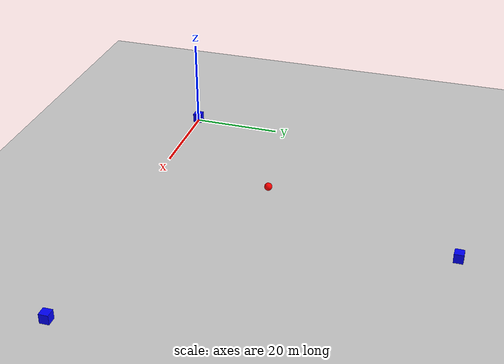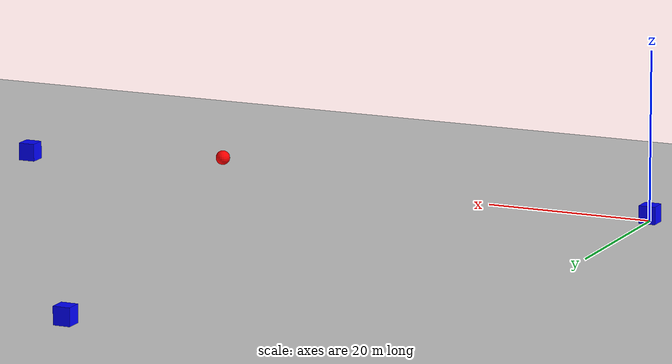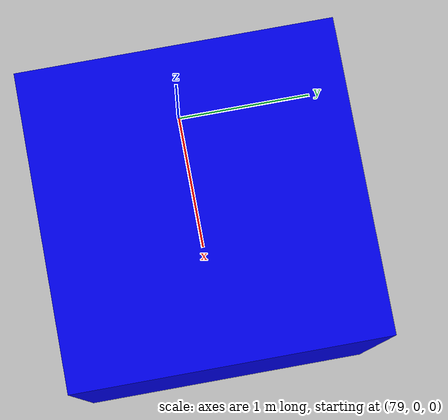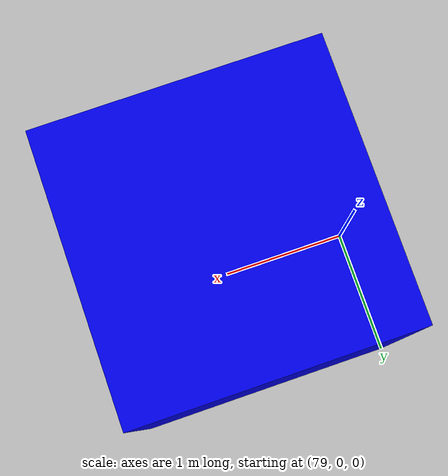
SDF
<!--DEPRECATED: this file is part of an older simulation-->
<?xml version="1.0"?>
<sdf version="1.9">
    <world name="trilateration_world">
        <plugin filename="gz-sim-physics-system" name="gz::sim::systems::Physics" />
        <plugin filename="gz-sim-user-commands-system" name="gz::sim::systems::UserCommands" />
        <plugin filename="gz-sim-scene-broadcaster-system" name="gz::sim::systems::SceneBroadcaster" />

        <physics name="physics" type="ode">
            <max_step_size>0.01</max_step_size>
            <real_time_factor>1.0</real_time_factor>
        </physics>
        <gravity>0 0 0</gravity>

        <include>
            <uri>https://fuel.gazebosim.org/1.0/OpenRobotics/models/Sun</uri>
        </include>

        <include>
            <uri>https://fuel.gazebosim.org/1.0/OpenRobotics/models/Ground Plane</uri>
            <scale>50 50 1</scale>
        </include>

        <include>
            <uri>model://ground_station</uri>
            <name>GS1</name>
            <pose>0 0 0 0 0 0</pose>
        </include>

        <include>
            <uri>model://ground_station</uri>
            <name>GS2</name>
            <pose>80 0 0 0 0 0</pose>
        </include>

        <include>
            <uri>model://ground_station</uri>
            <name>GS3</name>
            <pose>40 69.28 0 0 0 0</pose>
        </include>

        <include>
            <uri>model://drone</uri>
            <pose>40 30 10 0 0 0</pose>
        </include>
    </world>
</sdf>

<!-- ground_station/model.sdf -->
<sdf version="1.9">
    <model name="ground_station">
        <static>true</static>

        <link name="link">
            <visual name="visual">
                <geometry>
                    <box>
                        <size>2 2 4</size>
                    </box>
                </geometry>
                <material>
                    <ambient>0 0 1 1</ambient>
                    <diffuse>0 0 1 1</diffuse>
                </material>
            </visual>
        </link>
    </model>
</sdf>

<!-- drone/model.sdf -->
<!--DEPRECATED: this file is part of an older simulation-->
<?xml version="1.0"?>
<sdf version="1.9">
    <model name="drone">
        <static>false</static>

        <link name="base_link">
        <sensor name="imu_sensor" type="imu">
            <always_on>1</always_on>
            <update_rate>100</update_rate>
            <visualize>true</visualize>
            <topic>imu</topic>
            <imu>
                <angular_velocity>
                    <x><noise type="gaussian"><mean>0.0</mean><stddev>2e-4</stddev></noise></x>
                    <y><noise type="gaussian"><mean>0.0</mean><stddev>2e-4</stddev></noise></y>
                    <z><noise type="gaussian"><mean>0.0</mean><stddev>2e-4</stddev></noise></z>
                </angular_velocity>
                <linear_acceleration>
                    <x><noise type="gaussian"><mean>0.0</mean><stddev>1.7e-2</stddev></noise></x>
                    <y><noise type="gaussian"><mean>0.0</mean><stddev>1.7e-2</stddev></noise></y>
                    <z><noise type="gaussian"><mean>0.0</mean><stddev>1.7e-2</stddev></noise></z>
                </linear_acceleration>
            </imu>
        </sensor>
        <gravity>false</gravity>
            <inertial>
                <mass>1.0</mass>
                <inertia>
                    <ixx>0.01</ixx>
                    <iyy>0.01</iyy>
                    <izz>0.01</izz>
                </inertia>
            </inertial>
            <visual name="visual">
                <geometry>
                    <sphere>
                        <radius>0.8</radius>
                    </sphere>
                </geometry>
                <material>
                    <ambient>1 0 0 1</ambient>
                    <diffuse>1 0 0 1</diffuse>
                </material>
            </visual>
            <collision name="collision">
                <geometry>
                    <sphere>
                        <radius>0.8</radius>
                    </sphere>
                </geometry>
            </collision>
        </link>
        <plugin filename="gz-sim-imu-system" name="gz::sim::systems::Imu">
        </plugin>
        <plugin filename="gz-sim-pose-publisher-system" name="gz::sim::systems::PosePublisher">
            <publish_model_pose>true</publish_model_pose>
            <update_frequency>20</update_frequency>
        </plugin>
        <plugin filename="gz-sim-velocity-control-system" name="gz::sim::systems::VelocityControl">
            <initial_linear_velocity>0 0 0</initial_linear_velocity>
            <initial_angular_velocity>0 0 0</initial_angular_velocity>
        </plugin>
    </model>
</sdf>
